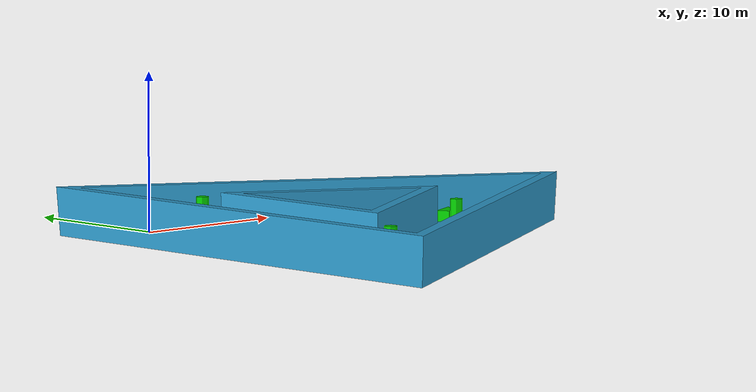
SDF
<?xml version ="1.0"?>
<sdf version="1.6">
  <model name="arena_task4">
    <pose>0 0 0  0 0 0</pose>
    <static>true</static>
    <link name="link">
      <collision name="colision3">
        <geometry>
          <mesh>
            <uri>model://arena_task4/meshes/Final_Map3.dae</uri>
            <scale>1 1 1</scale>
          </mesh>
        </geometry>
      </collision>

      <visual name="visual3">
        <cast_shadows>true</cast_shadows>
        <geometry>
          <mesh>
            <uri>model://arena_task4/meshes/Final_Map3.dae</uri>
            <scale>1 1 1</scale>
          </mesh>
        </geometry>
      </visual>

    </link>
  </model>
</sdf>
